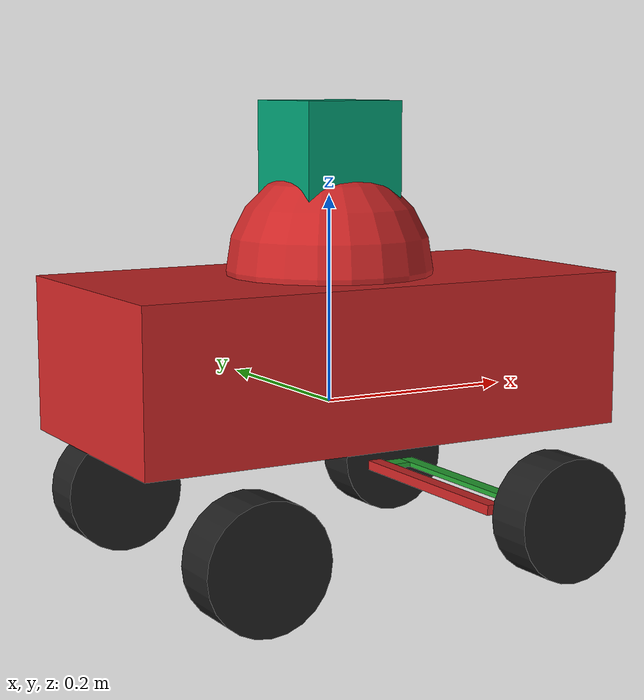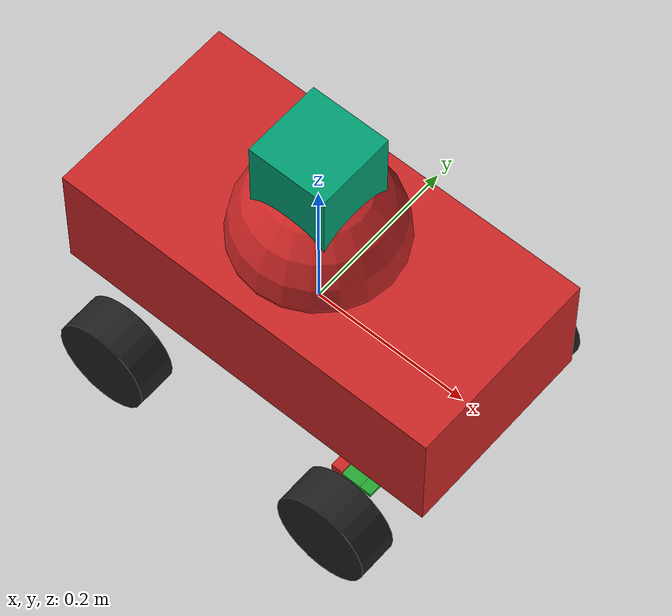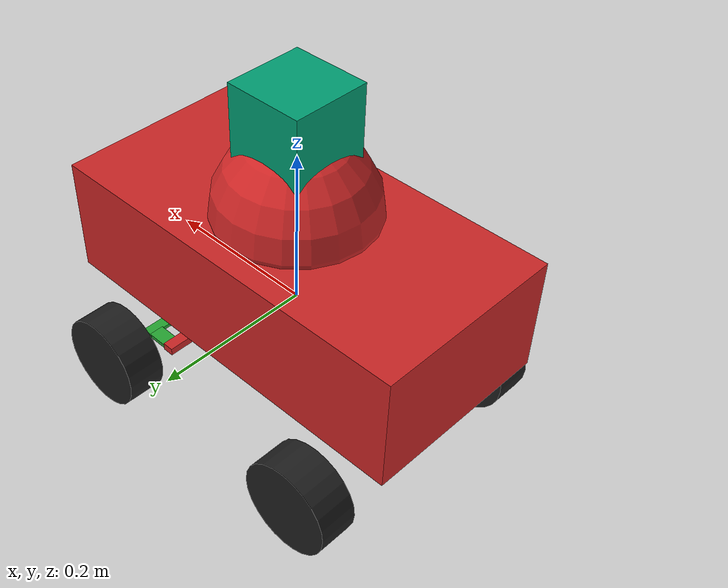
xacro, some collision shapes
<?xml version="1.0"?>

<robot name="first" xmlns:joint="http://playerstage.sourceforge.net/gazebo/xmlschema/#joint" xmlns:xacro="http://www.ros.org/wiki/xacro">

  <xacro:include filename="$(find robot-lab)/gazebo/default.gazebo" />

  <link name="base_link">
    <visual>
      <origin rpy="0 0 0" xyz="0 0 0.05" />
      <geometry>
        <box size="0.5 0.25 0.15" />
      </geometry>
    </visual>
    <collision>
      <origin rpy="0 0 0" xyz="0 0 0.05" />
      <geometry>
        <box size="0.5 0.25 0.15" />
      </geometry>
    </collision>
    <inertial>
      <mass value="5" />
      <origin xyz="0 0 0" />
      <inertia ixx="0.2" ixy="0.0" ixz="0.0" iyy="0.2" iyz="0.0" izz="0.2" />
    </inertial>
  </link>

  <link name="front_link">
    <visual>
      <geometry>
        <box size="0.015 0.22 0.005" />
      </geometry>
    </visual>
    <collision>
      <geometry>
        <box size="0.015 0.22 0.005" />
      </geometry>
    </collision>
    <inertial>
      <mass value="0.5" />
      <origin xyz="0 0 0" />
      <inertia ixx="0.01" ixy="0.0" ixz="0.0" iyy="0.01" iyz="0.0" izz="0.01" />
    </inertial>
  </link>

  <link name="back_link">
    <visual>
      <geometry>
        <box size="0.015 0.22 0.01" />
      </geometry>
    </visual>
    <collision>
      <geometry>
        <box size="0.015 0.22 0.01" />
      </geometry>
    </collision>
    <inertial>
      <mass value="0.01" />
      <origin xyz="0 0 0" />
      <inertia ixx="0.01" ixy="0.0" ixz="0.0" iyy="0.01" iyz="0.0" izz="0.01" />
    </inertial>
  </link>

  <link name="front_left_bar_link">
    <visual>
      <origin xyz="-0.02 0 0" />
      <geometry>
        <box size="0.03 0.01995 0.005" />
      </geometry>
    </visual>
    <collision>
      <origin xyz="-0.02 0 0" />
      <geometry>
        <box size="0.03 0.01995 0.005" />
      </geometry>
    </collision>
    <inertial>
      <mass value="0.2" />
      <origin xyz="0 0 0" />
      <inertia ixx="0.01" ixy="0.0" ixz="0.0" iyy="0.01" iyz="0.0" izz="0.01" />
    </inertial>
  </link>

  <link name="front_right_bar_link">
    <visual>
      <origin xyz="-0.02 0 0" />
      <geometry>
        <box size="0.03 0.01995 0.005" />
      </geometry>
    </visual>
    <collision>
      <origin xyz="-0.02 0 0" />
      <geometry>
        <box size="0.03 0.01995 0.005" />
      </geometry>
    </collision>
    <inertial>
      <mass value="0.2" />
      <origin xyz="0 0 0" />
      <inertia ixx="0.01" ixy="0.0" ixz="0.0" iyy="0.01" iyz="0.0" izz="0.01" />
    </inertial>
  </link>

  <link name="front_left_wheel_link">
    <visual>
      <origin rpy="1.57079632679 0 0" xyz="0 0 0" />
      <geometry>
        <cylinder length="0.05" radius="0.06" />
      </geometry>
    </visual>
    <collision>
      <origin rpy="1.57079632679 0 0" xyz="0 0 0" />
      <geometry>
        <cylinder length="0.025" radius="0.06" />
      </geometry>
    </collision>
    <inertial>
      <mass value="0.4" />
      <origin xyz="0 0 0" />
      <inertia ixx="0.01" ixy="0.0" ixz="0.0" iyy="0.01" iyz="0.0" izz="0.01" />
    </inertial>
  </link>

  <link name="front_right_wheel_link">
    <visual>
      <origin rpy="1.57079632679 0 0" xyz="0 0 0" />
      <geometry>
        <cylinder length="0.05" radius="0.06" />
      </geometry>
    </visual>
    <collision>
      <origin rpy="1.57079632679 0 0" xyz="0 0 0" />
      <geometry>
        <cylinder length="0.025" radius="0.06" />
      </geometry>
    </collision>
    <inertial>
      <mass value="0.4" />
      <origin xyz="0 0 0" />
      <inertia ixx="0.01" ixy="0.0" ixz="0.0" iyy="0.01" iyz="0.0" izz="0.01" />
    </inertial>
  </link>

  <link name="back_left_wheel_link">
    <visual>
      <origin rpy="1.57079632679 0 0" xyz="0 0 0" />
      <geometry>
        <cylinder length="0.05" radius="0.06" />
      </geometry>
    </visual>
    <collision>
      <origin rpy="1.57079632679 0 0" xyz="0 0 0" />
      <geometry>
        <cylinder length="0.025" radius="0.06" />
      </geometry>
    </collision>
    <inertial>
      <mass value="0.4" />
      <origin xyz="0 0 0" />
      <inertia ixx="0.01" ixy="0.0" ixz="0.0" iyy="0.01" iyz="0.0" izz="0.01" />
    </inertial>
  </link>

  <link name="back_right_wheel_link">
    <visual>
      <origin rpy="1.57079632679 0 0" xyz="0 0 0" />
      <geometry>
        <cylinder length="0.05" radius="0.06" />
      </geometry>
    </visual>
    <collision>
      <origin rpy="1.57079632679 0 0" xyz="0 0 0" />
      <geometry>
        <cylinder length="0.025" radius="0.06" />
      </geometry>
    </collision>
    <inertial>
      <mass value="0.4" />
      <origin xyz="0 0 0" />
      <inertia ixx="0.01" ixy="0.0" ixz="0.0" iyy="0.01" iyz="0.0" izz="0.01" />
    </inertial>
  </link>

  <link name="cabin">
    <visual>
      <geometry>
        <sphere radius="0.1" />
      </geometry>
    </visual>
    <collision>
      <geometry>
        <sphere radius="0.1" />
      </geometry>
    </collision>
    <inertial>
      <mass value="2" />
      <inertia ixx="0.2" ixy="0.0" ixz="0.0" iyy="0.2" iyz="0.0" izz="0.2" />
    </inertial>
  </link>

  <!-- Hokuyo Laser -->
  <link name="hokuyo_link">
    <collision>
      <origin xyz="0 0 0" rpy="0 0 0" />
      <geometry>
        <box size="0.1 0.1 0.1" />
      </geometry>
    </collision>

    <visual>
      <origin xyz="0 0 0" rpy="0 0 0" />
      <geometry>
        <mesh filename="package://robot-lab/meshes/hokuyo.dae" />
      </geometry>
    </visual>

    <inertial>
      <mass value="1e-5" />
      <origin xyz="0 0 0" rpy="0 0 0" />
      <inertia ixx="1e-6" ixy="0" ixz="0" iyy="1e-6" iyz="0" izz="1e-6" />
    </inertial>
  </link>

  <!-- JOINTS -->
  <joint name="front_bar_joint" type="fixed">
    <parent link="base_link" />
    <child link="front_link" />
    <origin xyz="0.16 0.0 -0.1" />
  </joint>

  <joint name="back_bar_joint" type="fixed">
    <axis xyz="0 0 1" />
    <parent link="front_link" />
    <child link="back_link" />
    <origin rpy="0 0 0" xyz="-0.04 0 0" />
  </joint>

  <joint name="front_left_bar_joint" type="revolute">
    <limit effort="100" lower="-0.5" upper="0.5" velocity="1" />
    <axis xyz="0 0 1" />
    <parent link="front_link" />
    <child link="front_left_bar_link" />
    <origin rpy="0 0 0" xyz="0.0 0.1 0.0" />
  </joint>

  <joint name="front_right_bar_joint" type="revolute">
    <limit effort="100" lower="-0.5" upper="0.5" velocity="1" />
    <axis xyz="0 0 1" />
    <parent link="front_link" />
    <child link="front_right_bar_link" />
    <origin rpy="0 0 0" xyz="0.0 -0.1 0.0" />
  </joint>

  <joint name="front_left_wheel_joint" type="continuous">
    <axis xyz="0 1 0" />
    <parent link="front_left_bar_link" />
    <child link="front_left_wheel_link" />
    <origin rpy="0 0 0" xyz="0 0.06 0" />
  </joint>

  <joint name="front_right_wheel_joint" type="continuous">
    <axis xyz="0 1 0" />
    <parent link="front_right_bar_link" />
    <child link="front_right_wheel_link" />
    <origin rpy="0 0 0" xyz="0 -0.06 0" />
  </joint>

  <joint name="back_left_wheel_joint" type="continuous">
    <axis xyz="0 1 0" />
    <parent link="base_link" />
    <child link="back_left_wheel_link" />
    <origin rpy="0 0 0" xyz="-0.16 0.155 -0.1" />
  </joint>

  <joint name="back_right_wheel_joint" type="continuous">
    <axis xyz="0 1 0" />
    <parent link="base_link" />
    <child link="back_right_wheel_link" />
    <origin rpy="0 0 0" xyz="-0.16 -0.155 -0.1" />
  </joint>

  <joint name="cabin_joint" type="fixed">
    <parent link="base_link" />
    <child link="cabin" />
    <origin xyz="0 0 0.13" />
  </joint>

  <joint name="hokuyo_joint" type="fixed">
    <axis xyz="0 1 0" />
    <origin xyz="0 0 0.11" rpy="0 0 0" />
    <parent link="cabin" />
    <child link="hokuyo_link" />
  </joint>

  <!-- MATERIAL -->

  <gazebo reference="base_link">
    <material>Gazebo/Red</material>
  </gazebo>

  <gazebo reference="cabin">
    <material>Gazebo/Red</material>
  </gazebo>

  <gazebo reference="front_link">
    <material>Gazebo/Green</material>
  </gazebo>

  <gazebo reference="back_link">
    <material>Gazebo/Red</material>
  </gazebo>

  <gazebo reference="front_left_bar_link">
    <material>Gazebo/Green</material>
  </gazebo>

  <gazebo reference="front_right_bar_link">
    <material>Gazebo/Green</material>
  </gazebo>

  <gazebo reference="front_right_wheel_link">
    <material>Gazebo/Black</material>
  </gazebo>

  <gazebo reference="front_left_wheel_link">
    <material>Gazebo/Black</material>
  </gazebo>

  <gazebo reference="back_left_wheel_link">
    <material>Gazebo/Black</material>
  </gazebo>

  <gazebo reference="back_right_wheel_link">
    <material>Gazebo/Black</material>
  </gazebo>

</robot>
